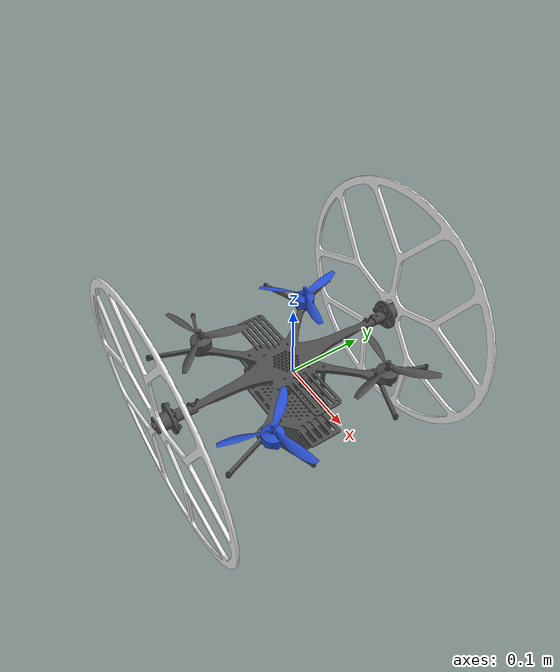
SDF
<?xml version="1.0" ?>
<sdf version='1.5'>
  <model name='AirGround'>
    <link name='base_link'>
      <inertial>
        <pose>0 0 0 0 0 0</pose>
        <mass>1.5</mass>
        <inertia>
          <ixx>0.029125</ixx>
          <ixy>0</ixy>
          <ixz>0</ixz>
          <iyy>0.029125</iyy>
          <iyz>0</iyz>
          <izz>0.055225</izz>
        </inertia>
      </inertial>
      <collision name='base_link_collision'>
        <pose>0 0 0 0 -0 0</pose>
        <geometry>
           <box>
            <size>0.36 0.4 0.05</size>
          </box>
        </geometry>
        <surface>
          <contact>
            <ode>
              <max_vel>100.0</max_vel>
              <min_depth>0.001</min_depth>
            </ode>
          </contact>
        </surface>
       </collision>

      <visual name='base_link_visual'>
        <pose>-0.015 0 0.0 0 -0 0</pose>
        <geometry>
          <mesh>
            <scale>1 1 1</scale>
            <uri>model://AirGround/meshes/base_link.STL</uri>
          </mesh>
        </geometry>
         <material>
          <script>
            <name>Gazebo/DarkGrey</name>
          </script>
        </material>
      </visual>
      <gravity>1</gravity>
      <velocity_decay/>
    </link>
    <joint name='leftwheel_joint' type='revolute'>
      <pose relative_to='base_link'>0.0 -0.18 0.02 0 0 0</pose>
      <parent>base_link</parent>
      <child>leftwheel_Link</child>
      <axis>
        <xyz>0 -1 0</xyz>
        <limit>
          <lower>-1e+16</lower>
          <upper>1e+16</upper>
        </limit>
        <dynamics>
          <damping>0.004</damping>
          <friction>0.0001</friction>
        </dynamics>
      </axis>
    <use_parent_model_frame>true</use_parent_model_frame>
    </joint>
    <link name='leftwheel_Link'>
      <pose relative_to='leftwheel_joint'>0 0 0 0 -0 0</pose>
      <inertial>
        <pose>0 0 0 0 -0 0</pose>
        <mass>0.05</mass>
        <inertia>
          <ixx>5.0167e-4</ixx>
          <ixy>0</ixy>
          <ixz>0</ixz>
          <iyy>1e-3</iyy>
          <iyz>0</iyz>
          <izz>5.0167e-4</izz>
        </inertia>
      </inertial>
      <collision name='leftwheel_Link_collision'>
        <pose>0 0 0 0 -0 0</pose>
        <geometry>
          <mesh>
            <scale>1 1 1</scale>
            <uri>model://AirGround/meshes/leftwheel_Link.STL</uri>
          </mesh>
        </geometry>
        <surface>
          <friction>
            <ode>
              <mu>1e+11</mu>
              <mu2>1e+16</mu2>
              <fdir1>0 0 1</fdir1>
              <slip1>0.0</slip1>
              <slip2>0.0</slip2>
            </ode>
          </friction>
          <contact>
            <ode>
              <min_depth>0.005</min_depth>
              <kp>1e8</kp>
            </ode>
          </contact>
        </surface>
      </collision>
      <visual name='leftwheel_Link_visual'>
        <pose>0 0 0 0 -0 0</pose>
        <geometry>
          <mesh>
            <scale>1 1 1</scale>
            <uri>model://AirGround/meshes/leftwheel_Link.STL</uri>
          </mesh>
        </geometry>
        <material>
          <script>
            <name>Gazebo/White</name>
            <uri>file://media/materials/scripts/gazebo.material</uri>
          </script>
        </material>
      </visual>
    </link>

     <joint name='rightwheel_joint' type='revolute'>
      <pose relative_to='base_link'>0 0.18 0.02 0 -0 0</pose>
      <parent>base_link</parent>
      <child>rightwheel_link</child>
      <axis>
        <xyz>0 1 0</xyz>
        <limit>
          <lower>-1e+16</lower>
          <upper>1e+16</upper>
        </limit>
        <dynamics>
          <damping>0.004</damping>
          <friction>0.0001</friction>
        </dynamics>
      </axis>
    <use_parent_model_frame>true</use_parent_model_frame>
    </joint>
    <link name='rightwheel_link'>
      <pose relative_to='rightwheel_joint'>0 0 0 0 -0 0</pose>
      <inertial>
        <pose>0 0 0 0 -0 0</pose>
        <mass>0.05</mass>
        <inertia>
          <ixx>5.0167e-4</ixx>
          <ixy>0</ixy>
          <ixz>0</ixz>
          <iyy>1e-3</iyy>
          <iyz>0</iyz>
          <izz>5.0167e-4</izz>
        </inertia>
      </inertial>
      <collision name='rightwheel_link_collision'>
        <pose>0 0 0 0 -0 0</pose>
        <geometry>
          <mesh>
            <scale>1 1 1</scale>
            <uri>model://AirGround/meshes/rightwheel_link.STL</uri>
          </mesh>
        </geometry>
        <surface>
          <friction>
            <ode>
              <mu>1e+11</mu>
              <mu2>1e+16</mu2>
              <fdir1>0 0 1</fdir1>
              <slip1>0.0</slip1>
              <slip2>0.0</slip2>
            </ode>
          </friction>
          <contact>
            <ode>
              <min_depth>0.005</min_depth>
              <kp>1e8</kp>
            </ode>
          </contact>
        </surface>
      </collision>
      <visual name='rightwheel_link_visual'>
        <pose>0 0 0 0 -0 0</pose>
        <geometry>
          <mesh>
            <scale>1 1 1</scale>
            <uri>model://AirGround/meshes/rightwheel_link.STL</uri>
          </mesh>
        </geometry>
        <material>
          <script>
            <name>Gazebo/White</name>
            <uri>file://media/materials/scripts/gazebo.material</uri>
          </script>
        </material>
      </visual>
    </link>

    <joint name='motor_1_joint' type='revolute'>
      <pose relative_to='base_link'>0.085244 -0.08055 0.029175 0 -0 0</pose>
      <parent>base_link</parent>
      <child>motor1_link</child>
      <axis>
        <xyz>0 0 1</xyz>
        <limit>
          <lower>-1e+16</lower>
          <upper>1e+16</upper>
        </limit>
         <dynamics>
          <damping>0.004</damping>
        </dynamics>
      </axis>
    </joint>
    <link name='motor1_link'>
      <pose relative_to='motor_1_joint'>0 0 0 0 -0 0</pose>
      <inertial>
        <pose>0 0 0 0 0 0</pose>
        <mass>0.005</mass>
        <inertia>
          <ixx>9.75e-07</ixx>
          <ixy>0</ixy>
          <ixz>0</ixz>
          <iyy>0.000273104</iyy>
          <iyz>0</iyz>
          <izz>0.000274004</izz>
        </inertia>
      </inertial>
      <collision name='motor1_link_collision'>
        <pose>0 0 0 0 -0 0</pose>
        <geometry>
          <cylinder>
            <length>0.005</length>
            <radius>0.128</radius>
          </cylinder>
        </geometry>
        <surface>
          <contact>
            <ode/>
          </contact>
          <friction>
            <ode/>
          </friction>
        </surface>
      </collision>
      <visual name='motor1_link_visual'>
        <pose>0 0 0 0 -0 0</pose>
        <geometry>
          <mesh>
            <scale>1 1 1</scale>
            <uri>model://AirGround/meshes/motor1_link.STL</uri>
          </mesh>
        </geometry>
        <material>
          <script>
            <name>Gazebo/Blue</name>
            <uri>file://media/materials/scripts/gazebo.material</uri>
          </script>
        </material>
      </visual>
      <gravity>1</gravity>
      <velocity_decay/>
    </link>
    <joint name='motor_2_joint' type='revolute'>
      <pose relative_to='base_link'>-0.085244 0.08055 0.029175 0 -0 0</pose>
      <parent>base_link</parent>
      <child>motor2_link</child>
      <axis>
        <xyz>0 0 1</xyz>
        <limit>
          <lower>-1e+16</lower>
          <upper>1e+16</upper>
        </limit>
        <dynamics>
          <damping>0.004</damping>
        </dynamics>
      </axis>
    </joint>
    <link name='motor2_link'>
      <pose relative_to='motor_2_joint'>0 0 0 0 -0 0</pose>
      <inertial>
        <pose>0 0 0 0 0 0</pose>
        <mass>0.005</mass>
        <inertia>
          <ixx>9.75e-07</ixx>
          <ixy>0</ixy>
          <ixz>0</ixz>
          <iyy>0.000273104</iyy>
          <iyz>0</iyz>
          <izz>0.000274004</izz>
        </inertia>
      </inertial>
      <collision name='motor2_link_collision'>
        <pose>0 0 0 0 -0 0</pose>
        <geometry>
          <cylinder>
            <length>0.005</length>
            <radius>0.128</radius>
          </cylinder>
        </geometry>
        <surface>
          <contact>
            <ode/>
          </contact>
          <friction>
            <ode/>
          </friction>
        </surface>
      </collision>
      <visual name='motor2_link_visual'>
        <pose>0 0 0 0 -0 0</pose>
        <geometry>
          <mesh>
            <scale>1 1 1</scale>
            <uri>model://AirGround/meshes/motor2_link.STL</uri>
          </mesh>
        </geometry>
        <material>
          <script>
            <name>Gazebo/Blue</name>
            <uri>file://media/materials/scripts/gazebo.material</uri>
          </script>
        </material>
      </visual>
      <gravity>1</gravity>
      <velocity_decay/>
    </link>
    <joint name='motor_3_joint' type='revolute'>
      <pose relative_to='base_link'>0.085244 0.08055 0.029175 0 -0 0</pose>
      <parent>base_link</parent>
      <child>motor3_link</child>
      <axis>
        <xyz>0 0 1</xyz>
        <limit>
          <lower>-1e+16</lower>
          <upper>1e+16</upper>
        </limit>
        <dynamics>
          <damping>0.004</damping>
        </dynamics>
      </axis>
    </joint>
    <link name='motor3_link'>
      <pose relative_to='motor_3_joint'>0 0 0 0 -0 0</pose>
      <inertial>
        <pose>0 0 0 0 0 0</pose>
        <mass>0.005</mass>
        <inertia>
          <ixx>9.75e-07</ixx>
          <ixy>0</ixy>
          <ixz>0</ixz>
          <iyy>0.000273104</iyy>
          <iyz>0</iyz>
          <izz>0.000274004</izz>
        </inertia>
      </inertial>
      <collision name='motor3_link_collision'>
        <pose>0 0 0 0 -0 0</pose>
        <geometry>
          <cylinder>
            <length>0.005</length>
            <radius>0.128</radius>
          </cylinder>
        </geometry>
        <surface>
          <contact>
            <ode/>
          </contact>
          <friction>
            <ode/>
          </friction>
        </surface>
      </collision>
      <visual name='motor3_link_visual'>
        <pose>0 0 0 0 -0 0</pose>
        <geometry>
          <mesh>
            <scale>1 1 1</scale>
            <uri>model://AirGround/meshes/motor3_link.STL</uri>
          </mesh>
        </geometry>
        <material>
          <script>
            <name>Gazebo/DarkGrey</name>
            <uri>file://media/materials/scripts/gazebo.material</uri>
          </script>
        </material>
      </visual>
       <gravity>1</gravity>
      <velocity_decay/>
    </link>
    <joint name='motor_4_joint' type='revolute'>
      <pose relative_to='base_link'>-0.085244 -0.08055 0.029175 0 -0 0</pose>
      <parent>base_link</parent>
      <child>motor4_link</child>
      <axis>
        <xyz>0 0 1</xyz>
        <limit>
          <lower>-1e+16</lower>
          <upper>1e+16</upper>
        </limit>
        <dynamics>
          <damping>0.004</damping>
        </dynamics>
      </axis>
    </joint>
    <link name='motor4_link'>
      <pose relative_to='motor_4_joint'>0 0 0 0 -0 0</pose>
      <inertial>
        <pose>0 0 0 0 0 0</pose>
        <mass>0.005</mass>
        <inertia>
          <ixx>9.75e-07</ixx>
          <ixy>0</ixy>
          <ixz>0</ixz>
          <iyy>0.000273104</iyy>
          <iyz>0</iyz>
          <izz>0.000274004</izz>
        </inertia>
      </inertial>
      <collision name='motor4_link_collision'>
        <pose>0 0 0 0 -0 0</pose>
        <geometry>
          <cylinder>
            <length>0.005</length>
            <radius>0.128</radius>
          </cylinder>
        </geometry>
        <surface>
          <contact>
            <ode/>
          </contact>
          <friction>
            <ode/>
          </friction>
        </surface>
      </collision>
      <visual name='motor4_link_visual'>
        <pose>0 0 0 0 -0 0</pose>
        <geometry>
          <mesh>
            <scale>1 1 1</scale>
            <uri>model://AirGround/meshes/motor4_link.STL</uri>
          </mesh>
        </geometry>
        <material>
          <script>
            <name>Gazebo/DarkGrey</name>
            <uri>file://media/materials/scripts/gazebo.material</uri>
          </script>
        </material>
      </visual>
      <gravity>1</gravity>
      <velocity_decay/>
    </link>

    <link name='imu_link'>
      <inertial>
        <pose>0 0 0 0 0 0</pose>
        <mass>0.15</mass>
        <inertia>
          <ixx>0.00001</ixx>
          <ixy>0</ixy>
          <ixz>0</ixz>
          <iyy>0.00002</iyy>
          <iyz>0</iyz>
          <izz>0.00002</izz>
        </inertia>
      </inertial>
      <sensor name="imu_sensor" type="imu">
        <pose>0 0 0 3.141593 0 0</pose>
        <always_on>1</always_on>
        <update_rate>100.0</update_rate>
      </sensor>
    </link>
    <joint name='imu_joint' type='revolute'>
      <child>imu_link</child>
      <parent>base_link</parent>
      <axis>
        <xyz>0 0 1</xyz>
        <limit>
          <lower>0</lower>
          <upper>0</upper>
          <effort>0</effort>
          <velocity>0</velocity>
        </limit>
        <dynamics>
          <damping>1.0</damping>
        </dynamics>
        <use_parent_model_frame>1</use_parent_model_frame>
      </axis>
      <physics>
        <ode>
          <implicit_spring_damper>1</implicit_spring_damper>
        </ode>
      </physics>
    </joint>

     <plugin name="rotor_0_blade_1" filename="libLiftDragPlugin.so">
      <a0>0.3</a0>
      <alpha_stall>1.4</alpha_stall>
      <cla>4.2500</cla>
      <cda>0.10</cda>
      <cma>0.00</cma>
      <cla_stall>-0.025</cla_stall>
      <cda_stall>0.0</cda_stall>
      <cma_stall>0.0</cma_stall>
      <area>0.002</area>
      <air_density>1.2041</air_density>
      <cp>0.084 0 0</cp>
      <forward>0 1 0</forward>
      <upward>0 0 1</upward>
      <link_name>AirGround::motor1_link</link_name>
    </plugin>
    <plugin name="rotor_0_blade_2" filename="libLiftDragPlugin.so">
      <a0>0.3</a0>
      <alpha_stall>1.4</alpha_stall>
      <cla>4.2500</cla>
      <cda>0.10</cda>
      <cma>0.00</cma>
      <cla_stall>-0.025</cla_stall>
      <cda_stall>0.0</cda_stall>
      <cma_stall>0.0</cma_stall>
      <area>0.002</area>
      <air_density>1.2041</air_density>
      <cp>-0.084 0 0</cp>
      <forward>0 -1 0</forward>
      <upward>0 0 1</upward>
      <link_name>AirGround::motor1_link</link_name>
    </plugin>

    <plugin name="rotor_1_blade_1" filename="libLiftDragPlugin.so">
      <a0>0.3</a0>
      <alpha_stall>1.4</alpha_stall>
      <cla>4.2500</cla>
      <cda>0.10</cda>
      <cma>0.00</cma>
      <cla_stall>-0.025</cla_stall>
      <cda_stall>0.0</cda_stall>
      <cma_stall>0.0</cma_stall>
      <area>0.002</area>
      <air_density>1.2041</air_density>
      <cp>0.084 0 0</cp>
      <forward>0 1 0</forward>
      <upward>0 0 1</upward>
      <link_name>AirGround::motor2_link</link_name>
    </plugin>
    <plugin name="rotor_1_blade_2" filename="libLiftDragPlugin.so">
      <a0>0.3</a0>
      <alpha_stall>1.4</alpha_stall>
      <cla>4.2500</cla>
      <cda>0.10</cda>
      <cma>0.00</cma>
      <cla_stall>-0.025</cla_stall>
      <cda_stall>0.0</cda_stall>
      <cma_stall>0.0</cma_stall>
      <area>0.002</area>
      <air_density>1.2041</air_density>
      <cp>-0.084 0 0</cp>
      <forward>0 -1 0</forward>
      <upward>0 0 1</upward>
      <link_name>AirGround::motor2_link</link_name>
    </plugin>

    <plugin name="rotor_2_blade_1" filename="libLiftDragPlugin.so">
      <a0>0.3</a0>
      <alpha_stall>1.4</alpha_stall>
      <cla>4.2500</cla>
      <cda>0.10</cda>
      <cma>0.00</cma>
      <cla_stall>-0.025</cla_stall>
      <cda_stall>0.0</cda_stall>
      <cma_stall>0.0</cma_stall>
      <area>0.002</area>
      <air_density>1.2041</air_density>
      <cp>0.084 0 0</cp>
      <forward>0 -1 0</forward>
      <upward>0 0 1</upward>
      <link_name>AirGround::motor3_link</link_name>
    </plugin>
    <plugin name="rotor_2_blade_2" filename="libLiftDragPlugin.so">
      <a0>0.3</a0>
      <alpha_stall>1.4</alpha_stall>
      <cla>4.2500</cla>
      <cda>0.10</cda>
      <cma>0.00</cma>
      <cla_stall>-0.025</cla_stall>
      <cda_stall>0.0</cda_stall>
      <cma_stall>0.0</cma_stall>
      <area>0.002</area>
      <air_density>1.2041</air_density>
      <cp>-0.084 0 0</cp>
      <forward>0 1 0</forward>
      <upward>0 0 1</upward>
      <link_name>AirGround::motor3_link</link_name>
    </plugin>

    <plugin name="rotor_3_blade_1" filename="libLiftDragPlugin.so">
      <a0>0.3</a0>
      <alpha_stall>1.4</alpha_stall>
      <cla>4.2500</cla>
      <cda>0.10</cda>
      <cma>0.00</cma>
      <cla_stall>-0.025</cla_stall>
      <cda_stall>0.0</cda_stall>
      <cma_stall>0.0</cma_stall>
      <area>0.002</area>
      <air_density>1.2041</air_density>
      <cp>0.084 0 0</cp>
      <forward>0 -1 0</forward>
      <upward>0 0 1</upward>
      <link_name>AirGround::motor4_link</link_name>
    </plugin>
    <plugin name="rotor_3_blade_2" filename="libLiftDragPlugin.so">
      <a0>0.3</a0>
      <alpha_stall>1.4</alpha_stall>
      <cla>4.2500</cla>
      <cda>0.10</cda>
      <cma>0.00</cma>
      <cla_stall>-0.025</cla_stall>
      <cda_stall>0.0</cda_stall>
      <cma_stall>0.0</cma_stall>
      <area>0.002</area>
      <air_density>1.2041</air_density>
      <cp>-0.084 0 0</cp>
      <forward>0 1 0</forward>
      <upward>0 0 1</upward>
      <link_name>AirGround::motor4_link</link_name>
    </plugin>
  </model>
</sdf>
